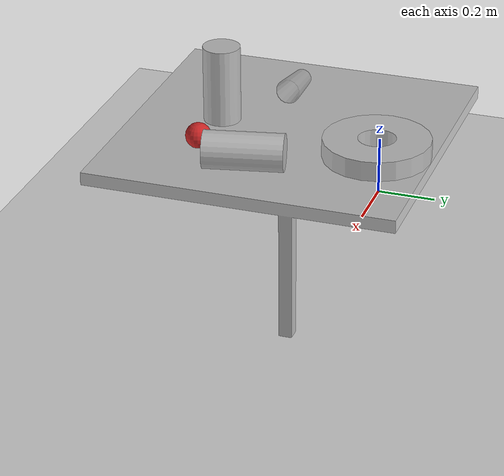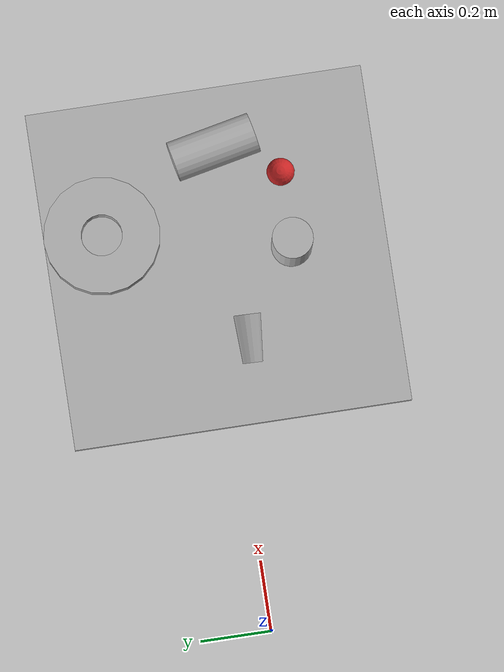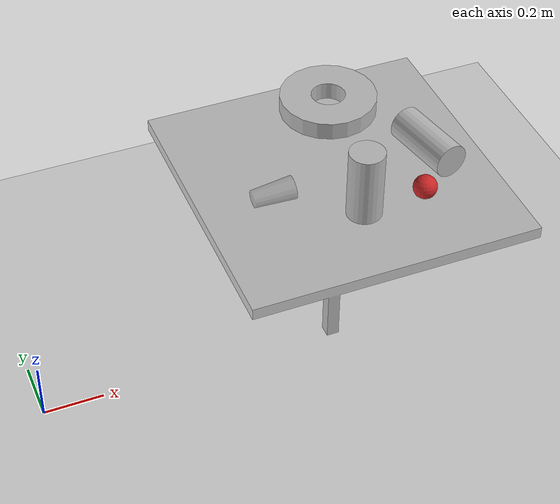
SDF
<sdf version="1.6">
 <world name="default">
  <model name="ground_plane">
   <static>1</static>
   <link name="link">
    <collision name="collision">
     <geometry><plane><normal>0 0 1</normal><size>100 100</size></plane></geometry>
     <surface><friction><ode><mu>100</mu><mu2>50</mu2></ode></friction></surface>
    </collision>
    <visual name="visual">
     <cast_shadows>0</cast_shadows>
     <geometry><plane><normal>0 0 1</normal><size>100 100</size></plane></geometry>
     <material>
      <script><uri>file://media/materials/scripts/gazebo.material</uri><name>Gazebo/Grey</name></script>
     </material>
    </visual>
   </link>
  </model>
  <light name="sun" type="directional">
   <pose>0 0 10 0 -0 0</pose>
   <diffuse>0.8 0.8 0.8 1</diffuse>
   <specular>0.2 0.2 0.2 1</specular>
   <attenuation>
    <range>1000</range>
    <constant>0.9</constant>
    <linear>0.01</linear>
    <quadratic>0.001</quadratic>
   </attenuation>
   <direction>-0.5 0.1 -0.9</direction>
  </light>
  <model name="table1">
   <static>1</static>
   <link name="link">
    <collision name="surface">
     <pose>0 0 0.755 0 -0 0</pose>
     <geometry><box><size>0.913 0.913 0.04</size></box></geometry>
    </collision>
    <collision name="column">
     <pose>0 0 0.37 0 -0 0</pose>
     <geometry><box><size>0.042 0.042 0.74</size></box></geometry>
    </collision>
    <collision name="base">
     <pose>0 0 0.02 0 -0 0</pose>
     <geometry><box><size>0.56 0.56 0.04</size></box></geometry>
    </collision>
    <visual name="visual">
     <geometry><mesh><uri>model://cafe_table/meshes/cafe_table.dae</uri></mesh></geometry>
    </visual>
   </link>
   <pose>1 0 -0.08 0 -0 0</pose>
  </model>
  <model name="cricket_ball">
   <link name="link">
    <pose>0 0 0.0375 0 -0 0</pose>
    <inertial>
     <mass>0.1467</mass>
     <inertia>
      <ixx>8.25187e-05</ixx>
      <ixy>0</ixy>
      <ixz>0</ixz>
      <iyy>8.25187e-05</iyy>
      <iyz>0</iyz>
      <izz>8.25187e-05</izz>
     </inertia>
    </inertial>
    <collision name="collision">
     <geometry><sphere><radius>0.0375</radius></sphere></geometry>
     <surface>
      <contact>
       <poissons_ratio>0.347</poissons_ratio>
       <elastic_modulus>8.8e+09</elastic_modulus>
       <ode><kp>100000</kp><kd>100</kd><max_vel>100</max_vel><min_depth>0.001</min_depth></ode>
      </contact>
      <friction>
       <torsional>
        <coefficient>1</coefficient>
        <use_patch_radius>0</use_patch_radius>
        <surface_radius>0.01</surface_radius>
       </torsional>
      </friction>
     </surface>
    </collision>
    <visual name="visual">
     <geometry><sphere><radius>0.0375</radius></sphere></geometry>
     <material>
      <script><uri>file://media/materials/scripts/gazebo.material</uri><name>Gazebo/Red</name></script>
     </material>
    </visual>
    <velocity_decay><linear>0</linear><angular>0.005</angular></velocity_decay>
   </link>
   <pose>1.20002 -0.199993 0.693991 0.00719 -0.01486 -0.000259</pose>
  </model>
  <model name="beer">
   <link name="link">
    <pose>0 0 0.115 0 -0 0</pose>
    <inertial>
     <mass>0.39</mass>
     <inertia><ixx>0.00058</ixx><ixy>0</ixy><ixz>0</ixz><iyy>0.00058</iyy><iyz>0</iyz><izz>0.00019</izz></inertia>
    </inertial>
    <collision name="collision">
     <geometry><cylinder><radius>0.055</radius><length>0.23</length></cylinder></geometry>
    </collision>
    <visual name="visual">
     <geometry><cylinder><radius>0.055</radius><length>0.23</length></cylinder></geometry>
     <material>
      <script>
       <uri>model://beer/materials/scripts</uri>
       <uri>model://beer/materials/textures</uri>
       <name>Beer/Diffuse</name>
      </script>
     </material>
    </visual>
   </link>
   <pose>0.999995 -0.199982 0.69499 -1e-06 2.6e-05 0.000675</pose>
  </model>
  <model name="disk_part">
   <link name="link">
    <inertial>
     <pose>0 0 0.02895 0 -0 0</pose>
     <mass>0.5</mass>
     <inertia>
      <ixx>0.00321218</ixx>
      <ixy>0</ixy>
      <ixz>0</ixz>
      <iyy>0.00321218</iyy>
      <iyz>0</iyz>
      <izz>0.00614499</izz>
     </inertia>
    </inertial>
    <collision name="collision">
     <pose>0 0 0.02895 0 -0 0</pose>
     <geometry><cylinder><length>0.0579</length><radius>0.15678</radius></cylinder></geometry>
    </collision>
    <visual name="visual">
     <geometry><mesh><uri>model://disk_part/meshes/disk.dae</uri></mesh></geometry>
     <material>
      <script>
       <uri>model://arm_part/materials/scripts</uri>
       <uri>model://arm_part/materials/textures</uri>
       <name>ArmPart/Diffuse</name>
      </script>
     </material>
    </visual>
   </link>
   <pose>1.10001 0.300034 0.752899 -3.14157 1.3e-05 -3.14154</pose>
  </model>
  <model name="plastic_cup">
   <link name="link">
    <pose>0 0 0.065 0 -0 0</pose>
    <inertial>
     <mass>0.0599</mass>
     <inertia>
      <ixx>0.000302896</ixx>
      <ixy>0</ixy>
      <ixz>0</ixz>
      <iyy>0.000302896</iyy>
      <iyz>0</iyz>
      <izz>3.28764e-05</izz>
     </inertia>
    </inertial>
    <collision name="collision">
     <geometry><mesh><uri>model://plastic_cup/meshes/plastic_cup.dae</uri></mesh></geometry>
     <surface>
      <contact>
       <poissons_ratio>0.35</poissons_ratio>
       <elastic_modulus>3.10264e+09</elastic_modulus>
       <ode><kp>100000</kp><kd>100</kd><max_vel>100</max_vel><min_depth>0.001</min_depth></ode>
      </contact>
      <friction>
       <torsional>
        <coefficient>1</coefficient>
        <use_patch_radius>0</use_patch_radius>
        <surface_radius>0.01</surface_radius>
       </torsional>
      </friction>
     </surface>
    </collision>
    <visual name="visual">
     <geometry><mesh><uri>model://plastic_cup/meshes/plastic_cup.dae</uri></mesh></geometry>
     <material>
      <script><uri>file://media/materials/scripts/gazebo.material</uri><name>Gazebo/GreyTransparent</name></script>
     </material>
    </visual>
   </link>
   <pose>0.711577 -0.04834 0.713771 1.49588 -0.195908 1.55917</pose>
  </model>
  <gravity>0 0 -9.8</gravity>
  <magnetic_field>6e-06 2.3e-05 -4.2e-05</magnetic_field>
  <atmosphere type="adiabatic"/>
  <physics name="default_physics" default="0" type="ode">
   <max_step_size>0.001</max_step_size>
   <real_time_factor>1</real_time_factor>
   <real_time_update_rate>1000</real_time_update_rate>
  </physics>
  <scene><ambient>0.4 0.4 0.4 1</ambient><background>0.7 0.7 0.7 1</background><shadows>1</shadows></scene>
  <spherical_coordinates>
   <surface_model>EARTH_WGS84</surface_model>
   <latitude_deg>0</latitude_deg>
   <longitude_deg>0</longitude_deg>
   <elevation>0</elevation>
   <heading_deg>0</heading_deg>
  </spherical_coordinates>
  <model name="beer_0">
   <link name="link">
    <pose>0 0 0.115 0 -0 0</pose>
    <inertial>
     <mass>0.39</mass>
     <inertia><ixx>0.00058</ixx><ixy>0</ixy><ixz>0</ixz><iyy>0.00058</iyy><iyz>0</iyz><izz>0.00019</izz></inertia>
    </inertial>
    <collision name="collision">
     <geometry><cylinder><radius>0.055</radius><length>0.23</length></cylinder></geometry>
    </collision>
    <visual name="visual">
     <geometry><cylinder><radius>0.055</radius><length>0.23</length></cylinder></geometry>
     <material>
      <script>
       <uri>model://beer/materials/scripts</uri>
       <uri>model://beer/materials/textures</uri>
       <name>Beer/Diffuse</name>
      </script>
     </material>
    </visual>
   </link>
   <pose>1.26636 0.081398 0.75 1.5708 -0.046727 0.206893</pose>
  </model>
 </world>
</sdf>
